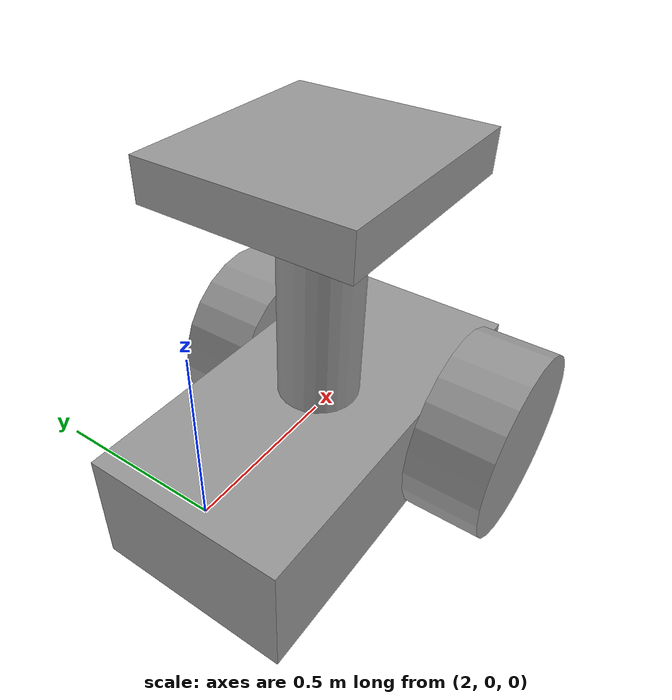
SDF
<?xml version='1.0'?>
<sdf version='1.6'>
  <model name='cody'>
    <link name='link_0'>
      <inertial>
        <mass>0.139888</mass>
        <inertia>
          <ixx>0.00424815</ixx>
          <ixy>0</ixy>
          <ixz>0</ixz>
          <iyy>0.01242</iyy>
          <iyz>0</iyz>
          <izz>0.0151428</izz>
        </inertia>
        <pose frame=''>0 0 0 0 -0 0</pose>
      </inertial>
      <pose frame=''>2.26803 -0.161715 0.175 0 -0 0</pose>
      <gravity>1</gravity>
      <self_collide>0</self_collide>
      <kinematic>0</kinematic>
      <enable_wind>0</enable_wind>
      <visual name='visual'>
        <pose frame=''>0 0 0 0 -0 0</pose>
        <geometry>
          <box>
            <size>1 0.5 0.3</size>
          </box>
        </geometry>
        <material>
          <lighting>1</lighting>
          <script>
            <uri>file://media/materials/scripts/gazebo.material</uri>
            <name>Gazebo/Grey</name>
          </script>
          <shader type='pixel'>
            <normal_map>__default__</normal_map>
          </shader>
          <ambient>0.3 0.3 0.3 1</ambient>
          <diffuse>0.7 0.7 0.7 1</diffuse>
          <specular>0.01 0.01 0.01 1</specular>
          <emissive>0 0 0 1</emissive>
        </material>
        <transparency>0</transparency>
        <cast_shadows>1</cast_shadows>
      </visual>
      <collision name='collision'>
        <laser_retro>0</laser_retro>
        <max_contacts>10</max_contacts>
        <pose frame=''>0 0 0 0 -0 0</pose>
        <geometry>
          <box>
            <size>1 0.5 0.3</size>
          </box>
        </geometry>
        <surface>
          <friction>
            <ode>
              <mu>1</mu>
              <mu2>1</mu2>
              <fdir1>0 0 0</fdir1>
              <slip1>0</slip1>
              <slip2>0</slip2>
            </ode>
            <torsional>
              <coefficient>1</coefficient>
              <patch_radius>0</patch_radius>
              <surface_radius>0</surface_radius>
              <use_patch_radius>1</use_patch_radius>
              <ode>
                <slip>0</slip>
              </ode>
            </torsional>
          </friction>
          <bounce>
            <restitution_coefficient>0</restitution_coefficient>
            <threshold>1e+06</threshold>
          </bounce>
          <contact>
            <collide_without_contact>0</collide_without_contact>
            <collide_without_contact_bitmask>1</collide_without_contact_bitmask>
            <collide_bitmask>1</collide_bitmask>
            <ode>
              <soft_cfm>0</soft_cfm>
              <soft_erp>0.2</soft_erp>
              <kp>1e+13</kp>
              <kd>1</kd>
              <max_vel>0.01</max_vel>
              <min_depth>0</min_depth>
            </ode>
            <bullet>
              <split_impulse>1</split_impulse>
              <split_impulse_penetration_threshold>-0.01</split_impulse_penetration_threshold>
              <soft_cfm>0</soft_cfm>
              <soft_erp>0.2</soft_erp>
              <kp>1e+13</kp>
              <kd>1</kd>
            </bullet>
          </contact>
        </surface>
      </collision>
    </link>
    <link name='link_1'>
      <inertial>
        <mass>1</mass>
        <inertia>
          <ixx>0.1</ixx>
          <ixy>0</ixy>
          <ixz>0</ixz>
          <iyy>0.1</iyy>
          <iyz>0</iyz>
          <izz>0.1</izz>
        </inertia>
        <pose frame=''>0 0 0 0 -0 0</pose>
      </inertial>
      <pose frame=''>1.96803 -0.161715 0.125 0 -0 0</pose>
      <gravity>1</gravity>
      <self_collide>0</self_collide>
      <kinematic>0</kinematic>
      <enable_wind>0</enable_wind>
      <visual name='visual'>
        <pose frame=''>0 0 0 0 -0 0</pose>
        <geometry>
          <sphere>
            <radius>0.2</radius>
          </sphere>
        </geometry>
        <material>
          <lighting>1</lighting>
          <script>
            <uri>file://media/materials/scripts/gazebo.material</uri>
            <name>Gazebo/Grey</name>
          </script>
          <shader type='pixel'>
            <normal_map>__default__</normal_map>
          </shader>
          <ambient>0.3 0.3 0.3 1</ambient>
          <diffuse>0.7 0.7 0.7 1</diffuse>
          <specular>0.01 0.01 0.01 1</specular>
          <emissive>0 0 0 1</emissive>
        </material>
        <transparency>0</transparency>
        <cast_shadows>1</cast_shadows>
      </visual>
      <collision name='collision'>
        <laser_retro>0</laser_retro>
        <max_contacts>10</max_contacts>
        <pose frame=''>0 0 0 0 -0 0</pose>
        <geometry>
          <sphere>
            <radius>0.2</radius>
          </sphere>
        </geometry>
        <surface>
          <friction>
            <ode>
              <mu>1</mu>
              <mu2>1</mu2>
              <fdir1>0 0 0</fdir1>
              <slip1>0</slip1>
              <slip2>0</slip2>
            </ode>
            <torsional>
              <coefficient>1</coefficient>
              <patch_radius>0</patch_radius>
              <surface_radius>0</surface_radius>
              <use_patch_radius>1</use_patch_radius>
              <ode>
                <slip>0</slip>
              </ode>
            </torsional>
          </friction>
          <bounce>
            <restitution_coefficient>0</restitution_coefficient>
            <threshold>1e+06</threshold>
          </bounce>
          <contact>
            <collide_without_contact>0</collide_without_contact>
            <collide_without_contact_bitmask>1</collide_without_contact_bitmask>
            <collide_bitmask>1</collide_bitmask>
            <ode>
              <soft_cfm>0</soft_cfm>
              <soft_erp>0.2</soft_erp>
              <kp>1e+13</kp>
              <kd>1</kd>
              <max_vel>0.01</max_vel>
              <min_depth>0</min_depth>
            </ode>
            <bullet>
              <split_impulse>1</split_impulse>
              <split_impulse_penetration_threshold>-0.01</split_impulse_penetration_threshold>
              <soft_cfm>0</soft_cfm>
              <soft_erp>0.2</soft_erp>
              <kp>1e+13</kp>
              <kd>1</kd>
            </bullet>
          </contact>
        </surface>
      </collision>
    </link>
    <link name='link_2_clone'>
      <inertial>
        <mass>1</mass>
        <inertia>
          <ixx>0.145833</ixx>
          <ixy>0</ixy>
          <ixz>0</ixz>
          <iyy>0.145833</iyy>
          <iyz>0</iyz>
          <izz>0.125</izz>
        </inertia>
        <pose frame=''>0 0 0 0 -0 0</pose>
      </inertial>
      <pose frame=''>2.51803 -0.511739 0.175 1.5707 -0 0</pose>
      <gravity>1</gravity>
      <self_collide>0</self_collide>
      <kinematic>0</kinematic>
      <enable_wind>0</enable_wind>
      <visual name='visual'>
        <pose frame=''>0 0 0 0 -0 0</pose>
        <geometry>
          <cylinder>
            <radius>0.25</radius>
            <length>0.2</length>
          </cylinder>
        </geometry>
        <material>
          <lighting>1</lighting>
          <script>
            <uri>file://media/materials/scripts/gazebo.material</uri>
            <name>Gazebo/Grey</name>
          </script>
          <shader type='pixel'>
            <normal_map>__default__</normal_map>
          </shader>
          <ambient>0.3 0.3 0.3 1</ambient>
          <diffuse>0.7 0.7 0.7 1</diffuse>
          <specular>0.01 0.01 0.01 1</specular>
          <emissive>0 0 0 1</emissive>
        </material>
        <transparency>0</transparency>
        <cast_shadows>1</cast_shadows>
      </visual>
      <collision name='collision'>
        <laser_retro>0</laser_retro>
        <max_contacts>10</max_contacts>
        <pose frame=''>0 0 0 0 -0 0</pose>
        <geometry>
          <cylinder>
            <radius>0.25</radius>
            <length>0.2</length>
          </cylinder>
        </geometry>
        <surface>
          <friction>
            <ode>
              <mu>1</mu>
              <mu2>1</mu2>
              <fdir1>0 0 0</fdir1>
              <slip1>0</slip1>
              <slip2>0</slip2>
            </ode>
            <torsional>
              <coefficient>1</coefficient>
              <patch_radius>0</patch_radius>
              <surface_radius>0</surface_radius>
              <use_patch_radius>1</use_patch_radius>
              <ode>
                <slip>0</slip>
              </ode>
            </torsional>
          </friction>
          <bounce>
            <restitution_coefficient>0</restitution_coefficient>
            <threshold>1e+06</threshold>
          </bounce>
          <contact>
            <collide_without_contact>0</collide_without_contact>
            <collide_without_contact_bitmask>1</collide_without_contact_bitmask>
            <collide_bitmask>1</collide_bitmask>
            <ode>
              <soft_cfm>0</soft_cfm>
              <soft_erp>0.2</soft_erp>
              <kp>1e+13</kp>
              <kd>1</kd>
              <max_vel>0.01</max_vel>
              <min_depth>0</min_depth>
            </ode>
            <bullet>
              <split_impulse>1</split_impulse>
              <split_impulse_penetration_threshold>-0.01</split_impulse_penetration_threshold>
              <soft_cfm>0</soft_cfm>
              <soft_erp>0.2</soft_erp>
              <kp>1e+13</kp>
              <kd>1</kd>
            </bullet>
          </contact>
        </surface>
      </collision>
    </link>
    <link name='link_3_clone'>
      <inertial>
        <mass>1</mass>
        <inertia>
          <ixx>0.145833</ixx>
          <ixy>0</ixy>
          <ixz>0</ixz>
          <iyy>0.145833</iyy>
          <iyz>0</iyz>
          <izz>0.125</izz>
        </inertia>
        <pose frame=''>0 0 0 0 -0 0</pose>
      </inertial>
      <pose frame=''>2.51803 0.188309 0.175 1.5707 -0 0</pose>
      <gravity>1</gravity>
      <self_collide>0</self_collide>
      <kinematic>0</kinematic>
      <enable_wind>0</enable_wind>
      <visual name='visual'>
        <pose frame=''>0 0 0 0 -0 0</pose>
        <geometry>
          <cylinder>
            <radius>0.25</radius>
            <length>0.2</length>
          </cylinder>
        </geometry>
        <material>
          <lighting>1</lighting>
          <script>
            <uri>file://media/materials/scripts/gazebo.material</uri>
            <name>Gazebo/Grey</name>
          </script>
          <shader type='pixel'>
            <normal_map>__default__</normal_map>
          </shader>
          <ambient>0.3 0.3 0.3 1</ambient>
          <diffuse>0.7 0.7 0.7 1</diffuse>
          <specular>0.01 0.01 0.01 1</specular>
          <emissive>0 0 0 1</emissive>
        </material>
        <transparency>0</transparency>
        <cast_shadows>1</cast_shadows>
      </visual>
      <collision name='collision'>
        <laser_retro>0</laser_retro>
        <max_contacts>10</max_contacts>
        <pose frame=''>0 0 0 0 -0 0</pose>
        <geometry>
          <cylinder>
            <radius>0.25</radius>
            <length>0.2</length>
          </cylinder>
        </geometry>
        <surface>
          <friction>
            <ode>
              <mu>1</mu>
              <mu2>1</mu2>
              <fdir1>0 0 0</fdir1>
              <slip1>0</slip1>
              <slip2>0</slip2>
            </ode>
            <torsional>
              <coefficient>1</coefficient>
              <patch_radius>0</patch_radius>
              <surface_radius>0</surface_radius>
              <use_patch_radius>1</use_patch_radius>
              <ode>
                <slip>0</slip>
              </ode>
            </torsional>
          </friction>
          <bounce>
            <restitution_coefficient>0</restitution_coefficient>
            <threshold>1e+06</threshold>
          </bounce>
          <contact>
            <collide_without_contact>0</collide_without_contact>
            <collide_without_contact_bitmask>1</collide_without_contact_bitmask>
            <collide_bitmask>1</collide_bitmask>
            <ode>
              <soft_cfm>0</soft_cfm>
              <soft_erp>0.2</soft_erp>
              <kp>1e+13</kp>
              <kd>1</kd>
              <max_vel>0.01</max_vel>
              <min_depth>0</min_depth>
            </ode>
            <bullet>
              <split_impulse>1</split_impulse>
              <split_impulse_penetration_threshold>-0.01</split_impulse_penetration_threshold>
              <soft_cfm>0</soft_cfm>
              <soft_erp>0.2</soft_erp>
              <kp>1e+13</kp>
              <kd>1</kd>
            </bullet>
          </contact>
        </surface>
      </collision>
    </link>
    <link name='link_4'>
      <inertial>
        <mass>1</mass>
        <inertia>
          <ixx>0.145833</ixx>
          <ixy>0</ixy>
          <ixz>0</ixz>
          <iyy>0.145833</iyy>
          <iyz>0</iyz>
          <izz>0.125</izz>
        </inertia>
        <pose frame=''>0 0 0 0 -0 0</pose>
      </inertial>
      <pose frame=''>2.26803 -0.161715 0.575 0 -0 0</pose>
      <gravity>1</gravity>
      <self_collide>0</self_collide>
      <kinematic>0</kinematic>
      <enable_wind>0</enable_wind>
      <visual name='visual'>
        <pose frame=''>0 0 0 0 -0 0</pose>
        <geometry>
          <cylinder>
            <radius>0.1</radius>
            <length>0.5</length>
          </cylinder>
        </geometry>
        <material>
          <lighting>1</lighting>
          <script>
            <uri>file://media/materials/scripts/gazebo.material</uri>
            <name>Gazebo/Grey</name>
          </script>
          <shader type='pixel'>
            <normal_map>__default__</normal_map>
          </shader>
          <ambient>0.3 0.3 0.3 1</ambient>
          <diffuse>0.7 0.7 0.7 1</diffuse>
          <specular>0.01 0.01 0.01 1</specular>
          <emissive>0 0 0 1</emissive>
        </material>
        <transparency>0</transparency>
        <cast_shadows>1</cast_shadows>
      </visual>
      <collision name='collision'>
        <laser_retro>0</laser_retro>
        <max_contacts>10</max_contacts>
        <pose frame=''>0 0 0 0 -0 0</pose>
        <geometry>
          <cylinder>
            <radius>0.1</radius>
            <length>0.5</length>
          </cylinder>
        </geometry>
        <surface>
          <friction>
            <ode>
              <mu>1</mu>
              <mu2>1</mu2>
              <fdir1>0 0 0</fdir1>
              <slip1>0</slip1>
              <slip2>0</slip2>
            </ode>
            <torsional>
              <coefficient>1</coefficient>
              <patch_radius>0</patch_radius>
              <surface_radius>0</surface_radius>
              <use_patch_radius>1</use_patch_radius>
              <ode>
                <slip>0</slip>
              </ode>
            </torsional>
          </friction>
          <bounce>
            <restitution_coefficient>0</restitution_coefficient>
            <threshold>1e+06</threshold>
          </bounce>
          <contact>
            <collide_without_contact>0</collide_without_contact>
            <collide_without_contact_bitmask>1</collide_without_contact_bitmask>
            <collide_bitmask>1</collide_bitmask>
            <ode>
              <soft_cfm>0</soft_cfm>
              <soft_erp>0.2</soft_erp>
              <kp>1e+13</kp>
              <kd>1</kd>
              <max_vel>0.01</max_vel>
              <min_depth>0</min_depth>
            </ode>
            <bullet>
              <split_impulse>1</split_impulse>
              <split_impulse_penetration_threshold>-0.01</split_impulse_penetration_threshold>
              <soft_cfm>0</soft_cfm>
              <soft_erp>0.2</soft_erp>
              <kp>1e+13</kp>
              <kd>1</kd>
            </bullet>
          </contact>
        </surface>
      </collision>
    </link>
    <link name='link_5_clone'>
      <inertial>
        <mass>0.0226706</mass>
        <inertia>
          <ixx>0.00054023</ixx>
          <ixy>0</ixy>
          <ixz>0</ixz>
          <iyy>0.0004373</iyy>
          <iyz>0</iyz>
          <izz>0.00094619</izz>
        </inertia>
        <pose frame=''>0 0 0 0 -0 0</pose>
      </inertial>
      <pose frame=''>2.28803 -0.141715 0.875 0 -0 0</pose>
      <gravity>1</gravity>
      <self_collide>0</self_collide>
      <kinematic>0</kinematic>
      <enable_wind>0</enable_wind>
      <visual name='visual'>
        <pose frame=''>0 0 0 0 -0 0</pose>
        <geometry>
          <box>
            <size>0.5414 0.5 0.1</size>
          </box>
        </geometry>
        <material>
          <lighting>1</lighting>
          <script>
            <uri>file://media/materials/scripts/gazebo.material</uri>
            <name>Gazebo/Grey</name>
          </script>
          <shader type='pixel'>
            <normal_map>__default__</normal_map>
          </shader>
          <ambient>0.3 0.3 0.3 1</ambient>
          <diffuse>0.7 0.7 0.7 1</diffuse>
          <specular>0.01 0.01 0.01 1</specular>
          <emissive>0 0 0 1</emissive>
        </material>
        <transparency>0</transparency>
        <cast_shadows>1</cast_shadows>
      </visual>
      <collision name='collision'>
        <laser_retro>0</laser_retro>
        <max_contacts>10</max_contacts>
        <pose frame=''>0 0 0 0 -0 0</pose>
        <geometry>
          <box>
            <size>0.472414 0.526936 0.091081</size>
          </box>
        </geometry>
        <surface>
          <friction>
            <ode>
              <mu>1</mu>
              <mu2>1</mu2>
              <fdir1>0 0 0</fdir1>
              <slip1>0</slip1>
              <slip2>0</slip2>
            </ode>
            <torsional>
              <coefficient>1</coefficient>
              <patch_radius>0</patch_radius>
              <surface_radius>0</surface_radius>
              <use_patch_radius>1</use_patch_radius>
              <ode>
                <slip>0</slip>
              </ode>
            </torsional>
          </friction>
          <bounce>
            <restitution_coefficient>0</restitution_coefficient>
            <threshold>1e+06</threshold>
          </bounce>
          <contact>
            <collide_without_contact>0</collide_without_contact>
            <collide_without_contact_bitmask>1</collide_without_contact_bitmask>
            <collide_bitmask>1</collide_bitmask>
            <ode>
              <soft_cfm>0</soft_cfm>
              <soft_erp>0.2</soft_erp>
              <kp>1e+13</kp>
              <kd>1</kd>
              <max_vel>0.01</max_vel>
              <min_depth>0</min_depth>
            </ode>
            <bullet>
              <split_impulse>1</split_impulse>
              <split_impulse_penetration_threshold>-0.01</split_impulse_penetration_threshold>
              <soft_cfm>0</soft_cfm>
              <soft_erp>0.2</soft_erp>
              <kp>1e+13</kp>
              <kd>1</kd>
            </bullet>
          </contact>
        </surface>
      </collision>
    </link>
    <joint name='link_0_JOINT_0' type='ball'>
      <parent>link_0</parent>
      <child>link_1</child>
      <pose frame=''>0 0 0 0 -0 0</pose>
      <physics>
        <ode>
          <limit>
            <cfm>0</cfm>
            <erp>0.2</erp>
          </limit>
          <suspension>
            <cfm>0</cfm>
            <erp>0.2</erp>
          </suspension>
        </ode>
      </physics>
    </joint>
    <joint name='link_0_JOINT_2' type='revolute'>
      <parent>link_0</parent>
      <child>link_2_clone</child>
      <pose frame=''>0 0 0 0 -0 0</pose>
      <axis>
        <xyz>0 0 1</xyz>
        <use_parent_model_frame>0</use_parent_model_frame>
        <limit>
          <lower>-1.79769e+308</lower>
          <upper>1.79769e+308</upper>
          <effort>-1</effort>
          <velocity>-1</velocity>
        </limit>
        <dynamics>
          <spring_reference>0</spring_reference>
          <spring_stiffness>0</spring_stiffness>
          <damping>0</damping>
        </dynamics>
      </axis>
      <physics>
        <ode>
          <limit>
            <cfm>0</cfm>
            <erp>0.2</erp>
          </limit>
          <suspension>
            <cfm>0</cfm>
            <erp>0.2</erp>
          </suspension>
        </ode>
      </physics>
    </joint>
    <joint name='link_0_JOINT_4' type='revolute'>
      <parent>link_0</parent>
      <child>link_3_clone</child>
      <pose frame=''>0 0 0 0 -0 0</pose>
      <axis>
        <xyz>0 0 1</xyz>
        <use_parent_model_frame>0</use_parent_model_frame>
        <limit>
          <lower>-1.79769e+308</lower>
          <upper>1.79769e+308</upper>
          <effort>-1</effort>
          <velocity>-1</velocity>
        </limit>
        <dynamics>
          <spring_reference>0</spring_reference>
          <spring_stiffness>0</spring_stiffness>
          <damping>0</damping>
        </dynamics>
      </axis>
      <physics>
        <ode>
          <limit>
            <cfm>0</cfm>
            <erp>0.2</erp>
          </limit>
          <suspension>
            <cfm>0</cfm>
            <erp>0.2</erp>
          </suspension>
        </ode>
      </physics>
    </joint>
    <joint name='link_0_JOINT_5' type='revolute'>
      <parent>link_0</parent>
      <child>link_4</child>
      <pose frame=''>0 0 0 0 -0 0</pose>
      <axis>
        <xyz>0 0 1</xyz>
        <use_parent_model_frame>0</use_parent_model_frame>
        <limit>
          <lower>-1.79769e+308</lower>
          <upper>1.79769e+308</upper>
          <effort>-1</effort>
          <velocity>-1</velocity>
        </limit>
        <dynamics>
          <spring_reference>0</spring_reference>
          <spring_stiffness>0</spring_stiffness>
          <damping>0</damping>
        </dynamics>
      </axis>
      <physics>
        <ode>
          <limit>
            <cfm>0</cfm>
            <erp>0.2</erp>
          </limit>
          <suspension>
            <cfm>0</cfm>
            <erp>0.2</erp>
          </suspension>
        </ode>
      </physics>
    </joint>
    <joint name='link_4_JOINT_6' type='fixed'>
      <parent>link_4</parent>
      <child>link_5_clone</child>
      <pose frame=''>0 0 0 0 -0 0</pose>
      <physics>
        <ode>
          <limit>
            <cfm>0</cfm>
            <erp>0.2</erp>
          </limit>
          <suspension>
            <cfm>0</cfm>
            <erp>0.2</erp>
          </suspension>
        </ode>
      </physics>
    </joint>
    <static>0</static>
    <allow_auto_disable>1</allow_auto_disable>
  </model>
</sdf>
